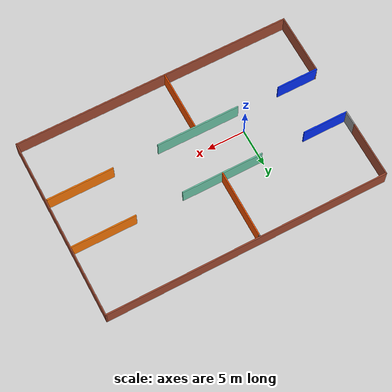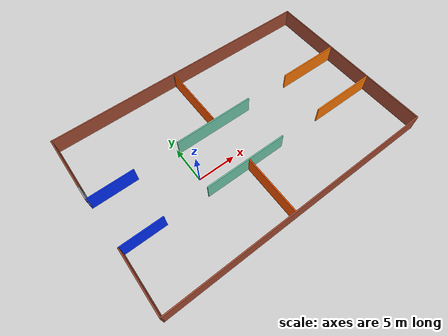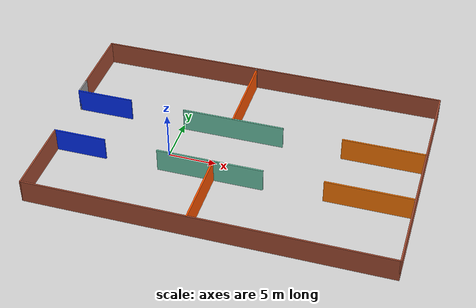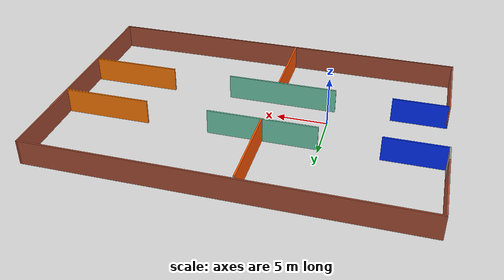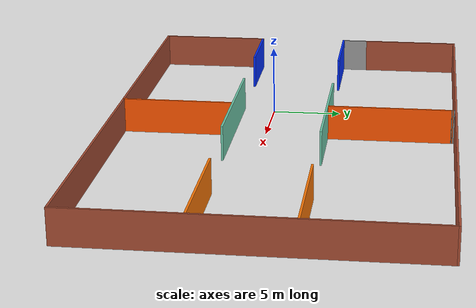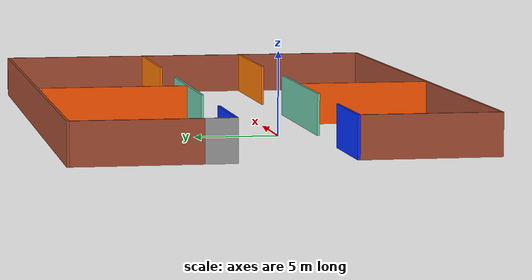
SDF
<?xml version='1.0'?>
<sdf version='1.6'>
  <model name='Chris.world'>
    <pose frame=''>6.94 1.64 0 0 -0 0</pose>
    <link name='Wall_0'>
      <collision name='Wall_0_Collision'>
        <geometry>
          <box>
            <size>8.25 0.15 2.5</size>
          </box>
        </geometry>
        <pose frame=''>0 0 1.25 0 -0 0</pose>
      </collision>
      <visual name='Wall_0_Visual'>
        <pose frame=''>0 0 1.25 0 -0 0</pose>
        <geometry>
          <box>
            <size>8.25 0.15 2.5</size>
          </box>
        </geometry>
        <material>
          <script>
            <uri>file://media/materials/scripts/gazebo.material</uri>
            <name>Gazebo/Bricks</name>
          </script>
          <ambient>1 1 1 1</ambient>
        </material>
        <meta>
          <layer>0</layer>
        </meta>
      </visual>
      <pose frame=''>-18.3 -8 0 0 0 -1.5708</pose>
    </link>
    <link name='Wall_1'>
      <collision name='Wall_1_Collision'>
        <geometry>
          <box>
            <size>37 0.15 2.5</size>
          </box>
        </geometry>
        <pose frame=''>0 0 1.25 0 -0 0</pose>
      </collision>
      <visual name='Wall_1_Visual'>
        <pose frame=''>0 0 1.25 0 -0 0</pose>
        <geometry>
          <box>
            <size>37 0.15 2.5</size>
          </box>
        </geometry>
        <material>
          <script>
            <uri>file://media/materials/scripts/gazebo.material</uri>
            <name>Gazebo/Bricks</name>
          </script>
          <ambient>1 1 1 1</ambient>
        </material>
        <meta>
          <layer>0</layer>
        </meta>
      </visual>
      <pose frame=''>0.125 -12.05 0 0 -0 0</pose>
    </link>
    <link name='Wall_12'>
      <collision name='Wall_12_Collision'>
        <geometry>
          <box>
            <size>8.5 0.15 2.5</size>
          </box>
        </geometry>
        <pose frame=''>0 0 1.25 0 -0 0</pose>
      </collision>
      <visual name='Wall_12_Visual'>
        <pose frame=''>0 0 1.25 0 -0 0</pose>
        <geometry>
          <box>
            <size>8.5 0.15 2.5</size>
          </box>
        </geometry>
        <material>
          <script>
            <uri>file://media/materials/scripts/gazebo.material</uri>
            <name>Gazebo/Grey</name>
          </script>
          <ambient>0.996078 0.47451 0.0196078 1</ambient>
        </material>
        <meta>
          <layer>0</layer>
        </meta>
      </visual>
      <pose frame=''>14.2814 2.85629 0 0 -0 0</pose>
    </link>
    <link name='Wall_14'>
      <collision name='Wall_14_Collision'>
        <geometry>
          <box>
            <size>5.5 0.15 2.5</size>
          </box>
        </geometry>
        <pose frame=''>0 0 1.25 0 -0 0</pose>
      </collision>
      <visual name='Wall_14_Visual'>
        <pose frame=''>0 0 1.25 0 -0 0</pose>
        <geometry>
          <box>
            <size>5.5 0.15 2.5</size>
          </box>
        </geometry>
        <material>
          <script>
            <uri>file://media/materials/scripts/gazebo.material</uri>
            <name>Gazebo/Grey</name>
          </script>
          <ambient>0.00784314 0.188235 1 1</ambient>
        </material>
        <meta>
          <layer>0</layer>
        </meta>
      </visual>
      <pose frame=''>-15.625 -3.95 0 0 -0 0</pose>
    </link>
    <link name='Wall_17'>
      <collision name='Wall_17_Collision'>
        <geometry>
          <box>
            <size>11 0.15 2.5</size>
          </box>
        </geometry>
        <pose frame=''>0 0 1.25 0 -0 0</pose>
      </collision>
      <visual name='Wall_17_Visual'>
        <pose frame=''>0 0 1.25 0 -0 0</pose>
        <geometry>
          <box>
            <size>11 0.15 2.5</size>
          </box>
        </geometry>
        <material>
          <script>
            <uri>file://media/materials/scripts/gazebo.material</uri>
            <name>Gazebo/Grey</name>
          </script>
          <ambient>0.435294 0.796078 0.67451 1</ambient>
        </material>
        <meta>
          <layer>0</layer>
        </meta>
      </visual>
      <pose frame=''>-1.82182 -3.99491 0 0 -0 0</pose>
    </link>
    <link name='Wall_19'>
      <collision name='Wall_19_Collision'>
        <geometry>
          <box>
            <size>8.75 0.15 2.5</size>
          </box>
        </geometry>
        <pose frame=''>0 0 1.25 0 -0 0</pose>
      </collision>
      <visual name='Wall_19_Visual'>
        <pose frame=''>0 0 1.25 0 -0 0</pose>
        <geometry>
          <box>
            <size>8.75 0.15 2.5</size>
          </box>
        </geometry>
        <material>
          <script>
            <uri>file://media/materials/scripts/gazebo.material</uri>
            <name>Gazebo/Grey</name>
          </script>
          <ambient>0.996078 0.47451 0.0196078 1</ambient>
        </material>
        <meta>
          <layer>0</layer>
        </meta>
      </visual>
      <pose frame=''>14.0613 -3.81137 0 0 -0 0</pose>
    </link>
    <link name='Wall_2'>
      <collision name='Wall_2_Collision'>
        <geometry>
          <box>
            <size>24.25 0.15 2.5</size>
          </box>
        </geometry>
        <pose frame=''>0 0 1.25 0 -0 0</pose>
      </collision>
      <visual name='Wall_2_Visual'>
        <pose frame=''>0 0 1.25 0 -0 0</pose>
        <geometry>
          <box>
            <size>24.25 0.15 2.5</size>
          </box>
        </geometry>
        <material>
          <script>
            <uri>file://media/materials/scripts/gazebo.material</uri>
            <name>Gazebo/Bricks</name>
          </script>
          <ambient>1 1 1 1</ambient>
        </material>
        <meta>
          <layer>0</layer>
        </meta>
      </visual>
      <pose frame=''>18.55 0 0 0 -0 1.5708</pose>
    </link>
    <link name='Wall_21'>
      <collision name='Wall_21_Collision'>
        <geometry>
          <box>
            <size>8 0.15 2.5</size>
          </box>
        </geometry>
        <pose frame=''>0 0 1.25 0 -0 0</pose>
      </collision>
      <visual name='Wall_21_Visual'>
        <pose frame=''>0 0 1.25 0 -0 0</pose>
        <geometry>
          <box>
            <size>8 0.15 2.5</size>
          </box>
        </geometry>
        <material>
          <script>
            <uri>file://media/materials/scripts/gazebo.material</uri>
            <name>Gazebo/Grey</name>
          </script>
          <ambient>1 0.333333 0 1</ambient>
        </material>
        <meta>
          <layer>0</layer>
        </meta>
      </visual>
      <pose frame=''>-1.46527 -8.08455 0 0 -0 1.5708</pose>
    </link>
    <link name='Wall_23'>
      <collision name='Wall_23_Collision'>
        <geometry>
          <box>
            <size>9 0.15 2.5</size>
          </box>
        </geometry>
        <pose frame=''>0 0 1.25 0 -0 0</pose>
      </collision>
      <visual name='Wall_23_Visual'>
        <pose frame=''>0 0 1.25 0 -0 0</pose>
        <geometry>
          <box>
            <size>9 0.15 2.5</size>
          </box>
        </geometry>
        <material>
          <script>
            <uri>file://media/materials/scripts/gazebo.material</uri>
            <name>Gazebo/Grey</name>
          </script>
          <ambient>1 0.333333 0 1</ambient>
        </material>
        <meta>
          <layer>0</layer>
        </meta>
      </visual>
      <pose frame=''>-1.46527 7.36545 0 0 -0 1.5708</pose>
    </link>
    <link name='Wall_24'>
      <collision name='Wall_24_Collision'>
        <geometry>
          <box>
            <size>0.25 0.15 2.5</size>
          </box>
        </geometry>
        <pose frame=''>0 0 1.25 0 -0 0</pose>
      </collision>
      <visual name='Wall_24_Visual'>
        <pose frame=''>0 0 1.25 0 -0 0</pose>
        <geometry>
          <box>
            <size>0.25 0.15 2.5</size>
          </box>
        </geometry>
        <material>
          <script>
            <uri>file://media/materials/scripts/gazebo.material</uri>
            <name>Gazebo/Grey</name>
          </script>
          <ambient>1 1 1 1</ambient>
        </material>
        <meta>
          <layer>0</layer>
        </meta>
      </visual>
      <pose frame=''>-1.47821 11.8387 0 0 -0 1.8326</pose>
    </link>
    <link name='Wall_25'>
      <collision name='Wall_25_Collision'>
        <geometry>
          <box>
            <size>0.25 0.15 2.5</size>
          </box>
        </geometry>
        <pose frame=''>0 0 1.25 0 -0 0</pose>
      </collision>
      <visual name='Wall_25_Visual'>
        <pose frame=''>0 0 1.25 0 -0 0</pose>
        <geometry>
          <box>
            <size>0.25 0.15 2.5</size>
          </box>
        </geometry>
        <material>
          <script>
            <uri>file://media/materials/scripts/gazebo.material</uri>
            <name>Gazebo/Grey</name>
          </script>
          <ambient>1 1 1 1</ambient>
        </material>
        <meta>
          <layer>0</layer>
        </meta>
      </visual>
      <pose frame=''>-1.47821 11.8387 0 0 0 -1.309</pose>
    </link>
    <link name='Wall_3'>
      <collision name='Wall_3_Collision'>
        <geometry>
          <box>
            <size>37.25 0.15 2.5</size>
          </box>
        </geometry>
        <pose frame=''>0 0 1.25 0 -0 0</pose>
      </collision>
      <visual name='Wall_3_Visual'>
        <pose frame=''>0 0 1.25 0 -0 0</pose>
        <geometry>
          <box>
            <size>37.25 0.15 2.5</size>
          </box>
        </geometry>
        <material>
          <script>
            <uri>file://media/materials/scripts/gazebo.material</uri>
            <name>Gazebo/Bricks</name>
          </script>
          <ambient>1 1 1 1</ambient>
        </material>
        <meta>
          <layer>0</layer>
        </meta>
      </visual>
      <pose frame=''>0 12.05 0 0 -0 3.14159</pose>
    </link>
    <link name='Wall_4'>
      <collision name='Wall_4_Collision'>
        <geometry>
          <box>
            <size>7.5 0.15 2.5</size>
          </box>
        </geometry>
        <pose frame=''>0 0 1.25 0 -0 0</pose>
      </collision>
      <visual name='Wall_4_Visual'>
        <pose frame=''>0 0 1.25 0 -0 0</pose>
        <geometry>
          <box>
            <size>7.5 0.15 2.5</size>
          </box>
        </geometry>
        <material>
          <script>
            <uri>file://media/materials/scripts/gazebo.material</uri>
            <name>Gazebo/Bricks</name>
          </script>
          <ambient>1 1 1 1</ambient>
        </material>
        <meta>
          <layer>0</layer>
        </meta>
      </visual>
      <pose frame=''>-18.55 8.375 0 0 0 -1.5708</pose>
    </link>
    <link name='Wall_5'>
      <collision name='Wall_5_Collision'>
        <geometry>
          <box>
            <size>2 0.15 2.5</size>
          </box>
        </geometry>
        <pose frame=''>0 0 1.25 0 -0 0</pose>
      </collision>
      <visual name='Wall_5_Visual'>
        <pose frame=''>0 0 1.25 0 -0 0</pose>
        <geometry>
          <box>
            <size>2 0.15 2.5</size>
          </box>
        </geometry>
        <material>
          <script>
            <uri>file://media/materials/scripts/gazebo.material</uri>
            <name>Gazebo/Grey</name>
          </script>
          <ambient>1 1 1 1</ambient>
        </material>
        <meta>
          <layer>0</layer>
        </meta>
      </visual>
      <pose frame=''>-18.55 3.775 0 0 0 -1.5708</pose>
    </link>
    <link name='Wall_6'>
      <collision name='Wall_6_Collision'>
        <geometry>
          <box>
            <size>6 0.15 2.5</size>
          </box>
        </geometry>
        <pose frame=''>0 0 1.25 0 -0 0</pose>
      </collision>
      <visual name='Wall_6_Visual'>
        <pose frame=''>0 0 1.25 0 -0 0</pose>
        <geometry>
          <box>
            <size>6 0.15 2.5</size>
          </box>
        </geometry>
        <material>
          <script>
            <uri>file://media/materials/scripts/gazebo.material</uri>
            <name>Gazebo/Grey</name>
          </script>
          <ambient>0.00784314 0.188235 1 1</ambient>
        </material>
        <meta>
          <layer>0</layer>
        </meta>
      </visual>
      <pose frame=''>-15.625 2.85 0 0 -0 0</pose>
    </link>
    <link name='Wall_9'>
      <collision name='Wall_9_Collision'>
        <geometry>
          <box>
            <size>10.75 0.15 2.5</size>
          </box>
        </geometry>
        <pose frame=''>0 0 1.25 0 -0 0</pose>
      </collision>
      <visual name='Wall_9_Visual'>
        <pose frame=''>0 0 1.25 0 -0 0</pose>
        <geometry>
          <box>
            <size>10.75 0.15 2.5</size>
          </box>
        </geometry>
        <material>
          <script>
            <uri>file://media/materials/scripts/gazebo.material</uri>
            <name>Gazebo/Grey</name>
          </script>
          <ambient>0.435294 0.796078 0.67451 1</ambient>
        </material>
        <meta>
          <layer>0</layer>
        </meta>
      </visual>
      <pose frame=''>-1.47151 2.85629 0 0 -0 0</pose>
    </link>
    <static>1</static>
  </model>
</sdf>
